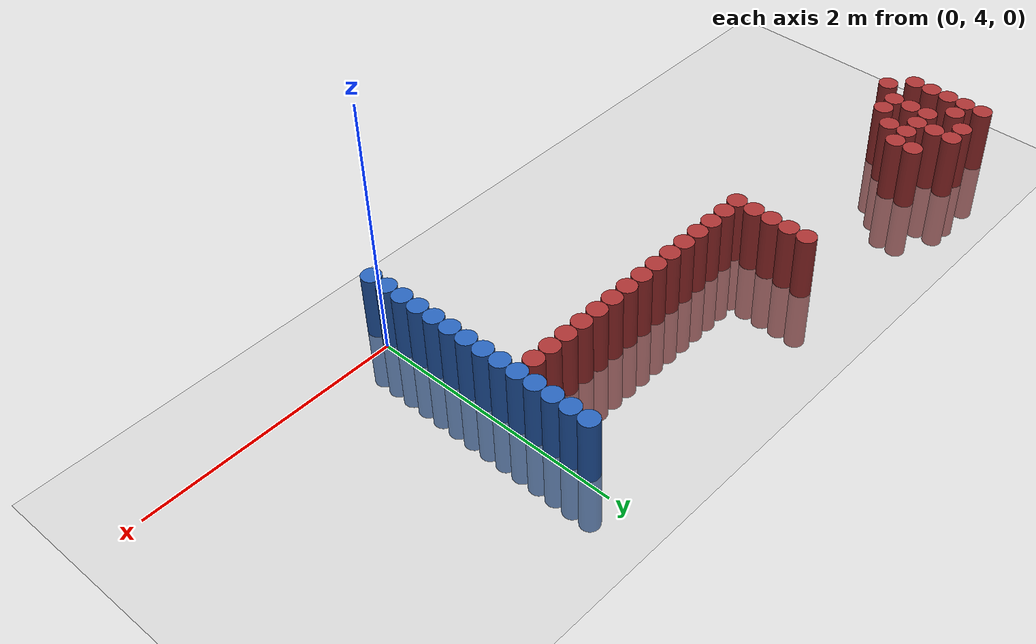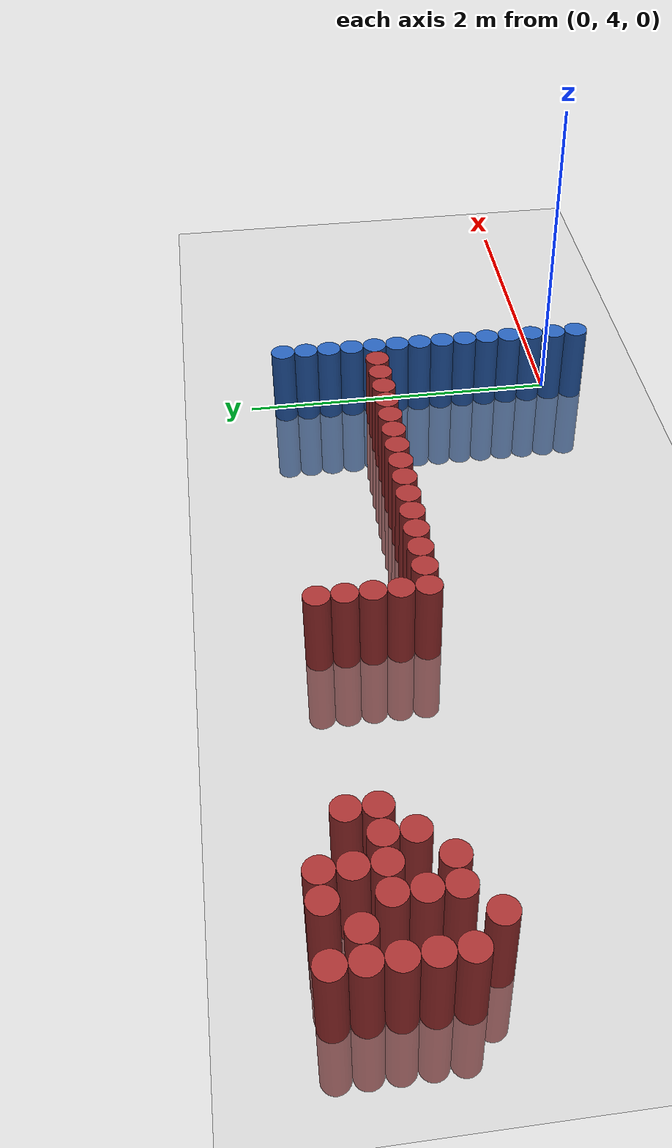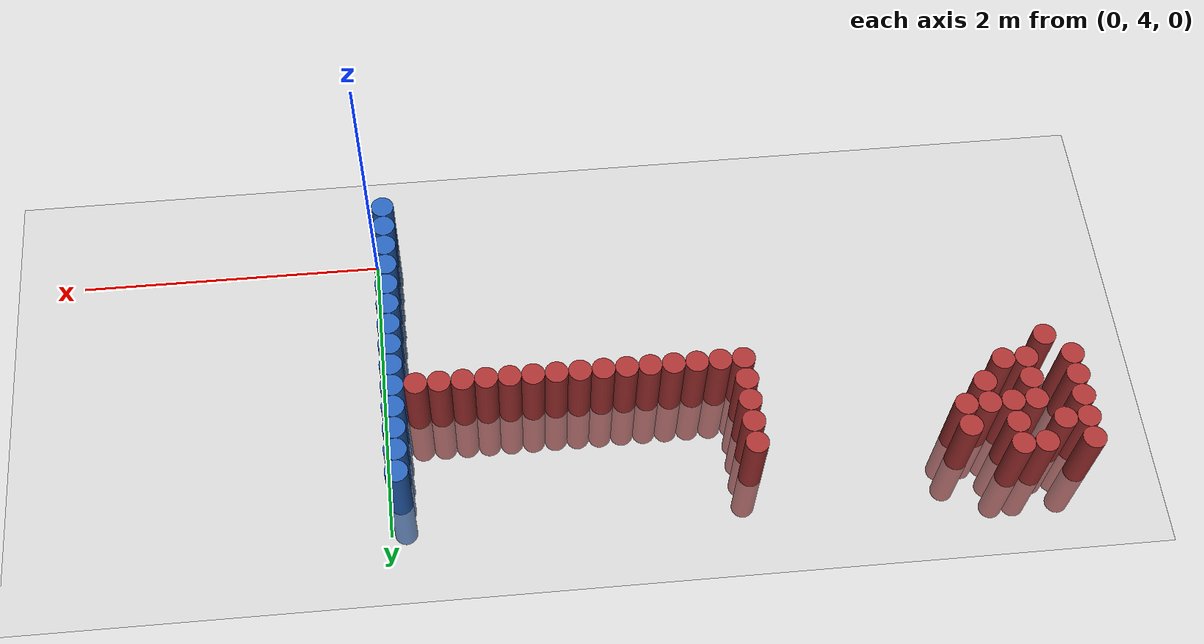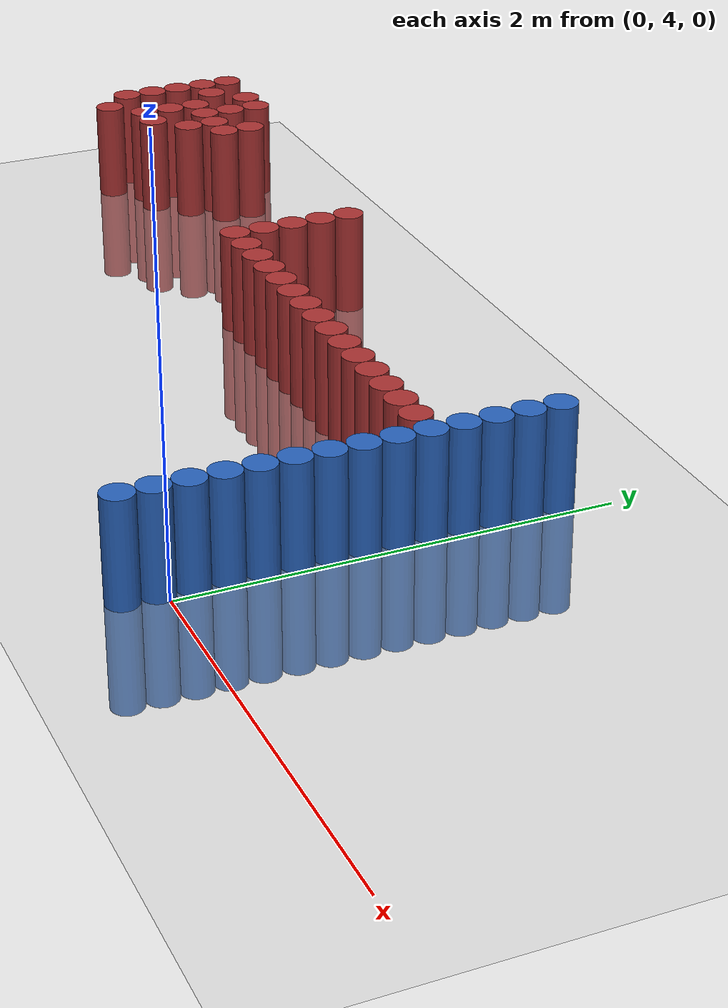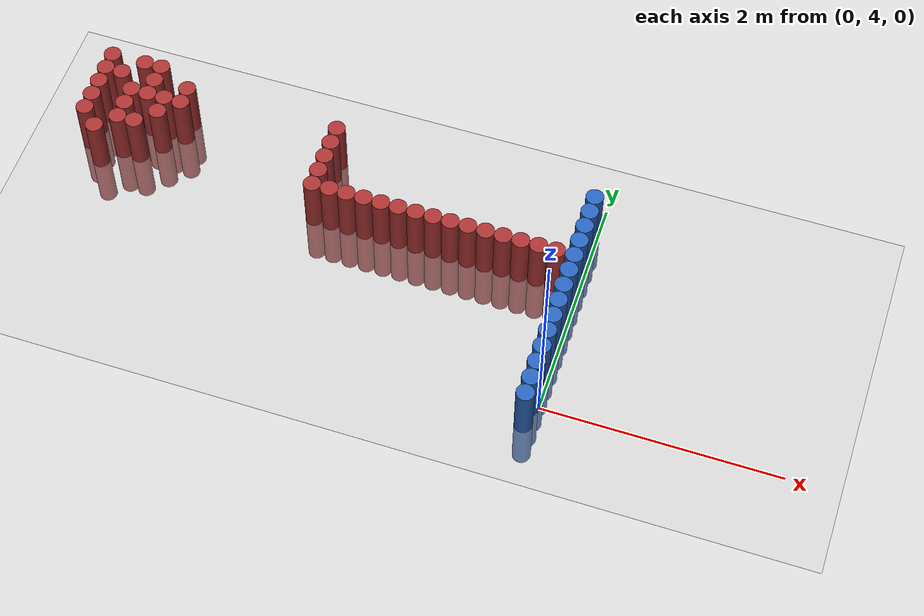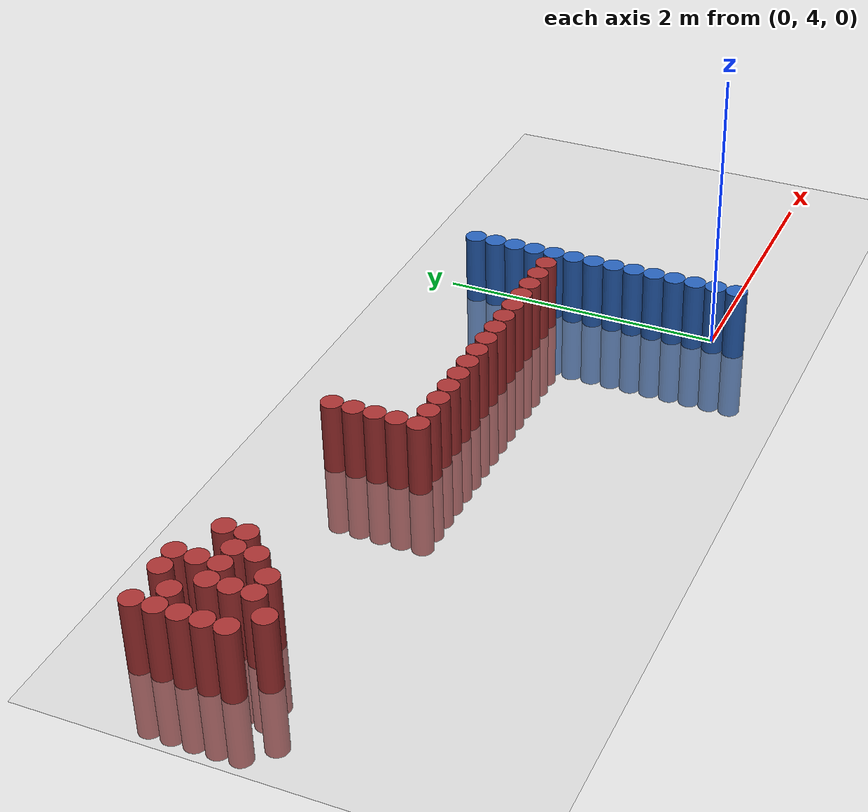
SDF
<sdf version="1.6">
 <world name="default">
  <model name="ground_plane">
   <static>1</static>
   <link name="link">
    <collision name="collision">
     <geometry><plane><normal>0 0 1</normal><size>100 100</size></plane></geometry>
     <surface><friction><ode><mu>100</mu><mu2>50</mu2></ode></friction></surface>
    </collision>
    <visual name="visual">
     <cast_shadows>0</cast_shadows>
     <geometry><plane><normal>0 0 1</normal><size>100 100</size></plane></geometry>
     <material>
      <script><uri>file://media/materials/scripts/gazebo.material</uri><name>Gazebo/Grey</name></script>
     </material>
    </visual>
   </link>
  </model>
  <model name="unit_cylinder_107">
   <static>1</static>
   <pose>-0.075000 3.825000 0.000000 0.000000 0.000000 0.000000</pose>
   <link name="link">
    <inertial>
     <mass>1</mass>
     <inertia><ixx>0.145833</ixx><ixy>0</ixy><ixz>0</ixz><iyy>0.145833</iyy><iyz>0</iyz><izz>0.125</izz></inertia>
    </inertial>
    <collision name="collision">
     <geometry><cylinder><radius>0.075000</radius><length>1</length></cylinder></geometry>
    </collision>
    <visual name="visual">
     <geometry><cylinder><radius>0.075000</radius><length>1</length></cylinder></geometry>
     <material>
      <ambient>0.152000 0.379000 0.720000 1</ambient>
      <diffuse>0.152000 0.379000 0.720000 1</diffuse>
     </material>
     <material>
      <script><name>Gazebo/Grey</name><uri>file://media/materials/scripts/gazebo.material</uri></script>
     </material>
    </visual>
   </link>
  </model>
  <model name="unit_cylinder_109">
   <static>1</static>
   <pose>-0.075000 3.975000 0.000000 0.000000 0.000000 0.000000</pose>
   <link name="link">
    <inertial>
     <mass>1</mass>
     <inertia><ixx>0.145833</ixx><ixy>0</ixy><ixz>0</ixz><iyy>0.145833</iyy><iyz>0</iyz><izz>0.125</izz></inertia>
    </inertial>
    <collision name="collision">
     <geometry><cylinder><radius>0.075000</radius><length>1</length></cylinder></geometry>
    </collision>
    <visual name="visual">
     <geometry><cylinder><radius>0.075000</radius><length>1</length></cylinder></geometry>
     <material>
      <ambient>0.152000 0.379000 0.720000 1</ambient>
      <diffuse>0.152000 0.379000 0.720000 1</diffuse>
     </material>
     <material>
      <script><name>Gazebo/Grey</name><uri>file://media/materials/scripts/gazebo.material</uri></script>
     </material>
    </visual>
   </link>
  </model>
  <model name="unit_cylinder_111">
   <static>1</static>
   <pose>-0.075000 4.125000 0.000000 0.000000 0.000000 0.000000</pose>
   <link name="link">
    <inertial>
     <mass>1</mass>
     <inertia><ixx>0.145833</ixx><ixy>0</ixy><ixz>0</ixz><iyy>0.145833</iyy><iyz>0</iyz><izz>0.125</izz></inertia>
    </inertial>
    <collision name="collision">
     <geometry><cylinder><radius>0.075000</radius><length>1</length></cylinder></geometry>
    </collision>
    <visual name="visual">
     <geometry><cylinder><radius>0.075000</radius><length>1</length></cylinder></geometry>
     <material>
      <ambient>0.152000 0.379000 0.720000 1</ambient>
      <diffuse>0.152000 0.379000 0.720000 1</diffuse>
     </material>
     <material>
      <script><name>Gazebo/Grey</name><uri>file://media/materials/scripts/gazebo.material</uri></script>
     </material>
    </visual>
   </link>
  </model>
  <model name="unit_cylinder_113">
   <static>1</static>
   <pose>-0.075000 4.275000 0.000000 0.000000 0.000000 0.000000</pose>
   <link name="link">
    <inertial>
     <mass>1</mass>
     <inertia><ixx>0.145833</ixx><ixy>0</ixy><ixz>0</ixz><iyy>0.145833</iyy><iyz>0</iyz><izz>0.125</izz></inertia>
    </inertial>
    <collision name="collision">
     <geometry><cylinder><radius>0.075000</radius><length>1</length></cylinder></geometry>
    </collision>
    <visual name="visual">
     <geometry><cylinder><radius>0.075000</radius><length>1</length></cylinder></geometry>
     <material>
      <ambient>0.152000 0.379000 0.720000 1</ambient>
      <diffuse>0.152000 0.379000 0.720000 1</diffuse>
     </material>
     <material>
      <script><name>Gazebo/Grey</name><uri>file://media/materials/scripts/gazebo.material</uri></script>
     </material>
    </visual>
   </link>
  </model>
  <model name="unit_cylinder_115">
   <static>1</static>
   <pose>-0.075000 4.425000 0.000000 0.000000 0.000000 0.000000</pose>
   <link name="link">
    <inertial>
     <mass>1</mass>
     <inertia><ixx>0.145833</ixx><ixy>0</ixy><ixz>0</ixz><iyy>0.145833</iyy><iyz>0</iyz><izz>0.125</izz></inertia>
    </inertial>
    <collision name="collision">
     <geometry><cylinder><radius>0.075000</radius><length>1</length></cylinder></geometry>
    </collision>
    <visual name="visual">
     <geometry><cylinder><radius>0.075000</radius><length>1</length></cylinder></geometry>
     <material>
      <ambient>0.152000 0.379000 0.720000 1</ambient>
      <diffuse>0.152000 0.379000 0.720000 1</diffuse>
     </material>
     <material>
      <script><name>Gazebo/Grey</name><uri>file://media/materials/scripts/gazebo.material</uri></script>
     </material>
    </visual>
   </link>
  </model>
  <model name="unit_cylinder_117">
   <static>1</static>
   <pose>-0.075000 4.575000 0.000000 0.000000 0.000000 0.000000</pose>
   <link name="link">
    <inertial>
     <mass>1</mass>
     <inertia><ixx>0.145833</ixx><ixy>0</ixy><ixz>0</ixz><iyy>0.145833</iyy><iyz>0</iyz><izz>0.125</izz></inertia>
    </inertial>
    <collision name="collision">
     <geometry><cylinder><radius>0.075000</radius><length>1</length></cylinder></geometry>
    </collision>
    <visual name="visual">
     <geometry><cylinder><radius>0.075000</radius><length>1</length></cylinder></geometry>
     <material>
      <ambient>0.152000 0.379000 0.720000 1</ambient>
      <diffuse>0.152000 0.379000 0.720000 1</diffuse>
     </material>
     <material>
      <script><name>Gazebo/Grey</name><uri>file://media/materials/scripts/gazebo.material</uri></script>
     </material>
    </visual>
   </link>
  </model>
  <model name="unit_cylinder_119">
   <static>1</static>
   <pose>-0.075000 4.725000 0.000000 0.000000 0.000000 0.000000</pose>
   <link name="link">
    <inertial>
     <mass>1</mass>
     <inertia><ixx>0.145833</ixx><ixy>0</ixy><ixz>0</ixz><iyy>0.145833</iyy><iyz>0</iyz><izz>0.125</izz></inertia>
    </inertial>
    <collision name="collision">
     <geometry><cylinder><radius>0.075000</radius><length>1</length></cylinder></geometry>
    </collision>
    <visual name="visual">
     <geometry><cylinder><radius>0.075000</radius><length>1</length></cylinder></geometry>
     <material>
      <ambient>0.152000 0.379000 0.720000 1</ambient>
      <diffuse>0.152000 0.379000 0.720000 1</diffuse>
     </material>
     <material>
      <script><name>Gazebo/Grey</name><uri>file://media/materials/scripts/gazebo.material</uri></script>
     </material>
    </visual>
   </link>
  </model>
  <model name="unit_cylinder_121">
   <static>1</static>
   <pose>-0.075000 4.875000 0.000000 0.000000 0.000000 0.000000</pose>
   <link name="link">
    <inertial>
     <mass>1</mass>
     <inertia><ixx>0.145833</ixx><ixy>0</ixy><ixz>0</ixz><iyy>0.145833</iyy><iyz>0</iyz><izz>0.125</izz></inertia>
    </inertial>
    <collision name="collision">
     <geometry><cylinder><radius>0.075000</radius><length>1</length></cylinder></geometry>
    </collision>
    <visual name="visual">
     <geometry><cylinder><radius>0.075000</radius><length>1</length></cylinder></geometry>
     <material>
      <ambient>0.152000 0.379000 0.720000 1</ambient>
      <diffuse>0.152000 0.379000 0.720000 1</diffuse>
     </material>
     <material>
      <script><name>Gazebo/Grey</name><uri>file://media/materials/scripts/gazebo.material</uri></script>
     </material>
    </visual>
   </link>
  </model>
  <model name="unit_cylinder_123">
   <static>1</static>
   <pose>-0.075000 5.025000 0.000000 0.000000 0.000000 0.000000</pose>
   <link name="link">
    <inertial>
     <mass>1</mass>
     <inertia><ixx>0.145833</ixx><ixy>0</ixy><ixz>0</ixz><iyy>0.145833</iyy><iyz>0</iyz><izz>0.125</izz></inertia>
    </inertial>
    <collision name="collision">
     <geometry><cylinder><radius>0.075000</radius><length>1</length></cylinder></geometry>
    </collision>
    <visual name="visual">
     <geometry><cylinder><radius>0.075000</radius><length>1</length></cylinder></geometry>
     <material>
      <ambient>0.152000 0.379000 0.720000 1</ambient>
      <diffuse>0.152000 0.379000 0.720000 1</diffuse>
     </material>
     <material>
      <script><name>Gazebo/Grey</name><uri>file://media/materials/scripts/gazebo.material</uri></script>
     </material>
    </visual>
   </link>
  </model>
  <model name="unit_cylinder_282">
   <static>1</static>
   <pose>-4.425000 5.325000 0.000000 0.000000 0.000000 0.000000</pose>
   <link name="link">
    <inertial>
     <mass>1</mass>
     <inertia><ixx>0.145833</ixx><ixy>0</ixy><ixz>0</ixz><iyy>0.145833</iyy><iyz>0</iyz><izz>0.125</izz></inertia>
    </inertial>
    <collision name="collision">
     <geometry><cylinder><radius>0.075000</radius><length>1</length></cylinder></geometry>
    </collision>
    <visual name="visual">
     <geometry><cylinder><radius>0.075000</radius><length>1</length></cylinder></geometry>
     <material>
      <ambient>0.648000 0.192000 0.192000 1</ambient>
      <diffuse>0.648000 0.192000 0.192000 1</diffuse>
     </material>
     <material>
      <script><name>Gazebo/Grey</name><uri>file://media/materials/scripts/gazebo.material</uri></script>
     </material>
    </visual>
   </link>
  </model>
  <model name="unit_cylinder_283">
   <static>1</static>
   <pose>-4.425000 5.475000 0.000000 0.000000 0.000000 0.000000</pose>
   <link name="link">
    <inertial>
     <mass>1</mass>
     <inertia><ixx>0.145833</ixx><ixy>0</ixy><ixz>0</ixz><iyy>0.145833</iyy><iyz>0</iyz><izz>0.125</izz></inertia>
    </inertial>
    <collision name="collision">
     <geometry><cylinder><radius>0.075000</radius><length>1</length></cylinder></geometry>
    </collision>
    <visual name="visual">
     <geometry><cylinder><radius>0.075000</radius><length>1</length></cylinder></geometry>
     <material>
      <ambient>0.648000 0.192000 0.192000 1</ambient>
      <diffuse>0.648000 0.192000 0.192000 1</diffuse>
     </material>
     <material>
      <script><name>Gazebo/Grey</name><uri>file://media/materials/scripts/gazebo.material</uri></script>
     </material>
    </visual>
   </link>
  </model>
  <model name="unit_cylinder_284">
   <static>1</static>
   <pose>-4.425000 5.625000 0.000000 0.000000 0.000000 0.000000</pose>
   <link name="link">
    <inertial>
     <mass>1</mass>
     <inertia><ixx>0.145833</ixx><ixy>0</ixy><ixz>0</ixz><iyy>0.145833</iyy><iyz>0</iyz><izz>0.125</izz></inertia>
    </inertial>
    <collision name="collision">
     <geometry><cylinder><radius>0.075000</radius><length>1</length></cylinder></geometry>
    </collision>
    <visual name="visual">
     <geometry><cylinder><radius>0.075000</radius><length>1</length></cylinder></geometry>
     <material>
      <ambient>0.648000 0.192000 0.192000 1</ambient>
      <diffuse>0.648000 0.192000 0.192000 1</diffuse>
     </material>
     <material>
      <script><name>Gazebo/Grey</name><uri>file://media/materials/scripts/gazebo.material</uri></script>
     </material>
    </visual>
   </link>
  </model>
  <model name="unit_cylinder_285">
   <static>1</static>
   <pose>-4.425000 5.775000 0.000000 0.000000 0.000000 0.000000</pose>
   <link name="link">
    <inertial>
     <mass>1</mass>
     <inertia><ixx>0.145833</ixx><ixy>0</ixy><ixz>0</ixz><iyy>0.145833</iyy><iyz>0</iyz><izz>0.125</izz></inertia>
    </inertial>
    <collision name="collision">
     <geometry><cylinder><radius>0.075000</radius><length>1</length></cylinder></geometry>
    </collision>
    <visual name="visual">
     <geometry><cylinder><radius>0.075000</radius><length>1</length></cylinder></geometry>
     <material>
      <ambient>0.648000 0.192000 0.192000 1</ambient>
      <diffuse>0.648000 0.192000 0.192000 1</diffuse>
     </material>
     <material>
      <script><name>Gazebo/Grey</name><uri>file://media/materials/scripts/gazebo.material</uri></script>
     </material>
    </visual>
   </link>
  </model>
  <model name="unit_cylinder_286">
   <static>1</static>
   <pose>-4.425000 5.925000 0.000000 0.000000 0.000000 0.000000</pose>
   <link name="link">
    <inertial>
     <mass>1</mass>
     <inertia><ixx>0.145833</ixx><ixy>0</ixy><ixz>0</ixz><iyy>0.145833</iyy><iyz>0</iyz><izz>0.125</izz></inertia>
    </inertial>
    <collision name="collision">
     <geometry><cylinder><radius>0.075000</radius><length>1</length></cylinder></geometry>
    </collision>
    <visual name="visual">
     <geometry><cylinder><radius>0.075000</radius><length>1</length></cylinder></geometry>
     <material>
      <ambient>0.648000 0.192000 0.192000 1</ambient>
      <diffuse>0.648000 0.192000 0.192000 1</diffuse>
     </material>
     <material>
      <script><name>Gazebo/Grey</name><uri>file://media/materials/scripts/gazebo.material</uri></script>
     </material>
    </visual>
   </link>
  </model>
  <model name="unit_cylinder_290">
   <static>1</static>
   <pose>-4.275000 5.175000 0.000000 0.000000 0.000000 0.000000</pose>
   <link name="link">
    <inertial>
     <mass>1</mass>
     <inertia><ixx>0.145833</ixx><ixy>0</ixy><ixz>0</ixz><iyy>0.145833</iyy><iyz>0</iyz><izz>0.125</izz></inertia>
    </inertial>
    <collision name="collision">
     <geometry><cylinder><radius>0.075000</radius><length>1</length></cylinder></geometry>
    </collision>
    <visual name="visual">
     <geometry><cylinder><radius>0.075000</radius><length>1</length></cylinder></geometry>
     <material>
      <ambient>0.648000 0.192000 0.192000 1</ambient>
      <diffuse>0.648000 0.192000 0.192000 1</diffuse>
     </material>
     <material>
      <script><name>Gazebo/Grey</name><uri>file://media/materials/scripts/gazebo.material</uri></script>
     </material>
    </visual>
   </link>
  </model>
  <model name="unit_cylinder_291">
   <static>1</static>
   <pose>-4.275000 5.775000 0.000000 0.000000 0.000000 0.000000</pose>
   <link name="link">
    <inertial>
     <mass>1</mass>
     <inertia><ixx>0.145833</ixx><ixy>0</ixy><ixz>0</ixz><iyy>0.145833</iyy><iyz>0</iyz><izz>0.125</izz></inertia>
    </inertial>
    <collision name="collision">
     <geometry><cylinder><radius>0.075000</radius><length>1</length></cylinder></geometry>
    </collision>
    <visual name="visual">
     <geometry><cylinder><radius>0.075000</radius><length>1</length></cylinder></geometry>
     <material>
      <ambient>0.648000 0.192000 0.192000 1</ambient>
      <diffuse>0.648000 0.192000 0.192000 1</diffuse>
     </material>
     <material>
      <script><name>Gazebo/Grey</name><uri>file://media/materials/scripts/gazebo.material</uri></script>
     </material>
    </visual>
   </link>
  </model>
  <model name="unit_cylinder_297">
   <static>1</static>
   <pose>-4.125000 5.325000 0.000000 0.000000 0.000000 0.000000</pose>
   <link name="link">
    <inertial>
     <mass>1</mass>
     <inertia><ixx>0.145833</ixx><ixy>0</ixy><ixz>0</ixz><iyy>0.145833</iyy><iyz>0</iyz><izz>0.125</izz></inertia>
    </inertial>
    <collision name="collision">
     <geometry><cylinder><radius>0.075000</radius><length>1</length></cylinder></geometry>
    </collision>
    <visual name="visual">
     <geometry><cylinder><radius>0.075000</radius><length>1</length></cylinder></geometry>
     <material>
      <ambient>0.648000 0.192000 0.192000 1</ambient>
      <diffuse>0.648000 0.192000 0.192000 1</diffuse>
     </material>
     <material>
      <script><name>Gazebo/Grey</name><uri>file://media/materials/scripts/gazebo.material</uri></script>
     </material>
    </visual>
   </link>
  </model>
  <model name="unit_cylinder_298">
   <static>1</static>
   <pose>-4.125000 5.475000 0.000000 0.000000 0.000000 0.000000</pose>
   <link name="link">
    <inertial>
     <mass>1</mass>
     <inertia><ixx>0.145833</ixx><ixy>0</ixy><ixz>0</ixz><iyy>0.145833</iyy><iyz>0</iyz><izz>0.125</izz></inertia>
    </inertial>
    <collision name="collision">
     <geometry><cylinder><radius>0.075000</radius><length>1</length></cylinder></geometry>
    </collision>
    <visual name="visual">
     <geometry><cylinder><radius>0.075000</radius><length>1</length></cylinder></geometry>
     <material>
      <ambient>0.648000 0.192000 0.192000 1</ambient>
      <diffuse>0.648000 0.192000 0.192000 1</diffuse>
     </material>
     <material>
      <script><name>Gazebo/Grey</name><uri>file://media/materials/scripts/gazebo.material</uri></script>
     </material>
    </visual>
   </link>
  </model>
  <model name="unit_cylinder_299">
   <static>1</static>
   <pose>-4.125000 5.625000 0.000000 0.000000 0.000000 0.000000</pose>
   <link name="link">
    <inertial>
     <mass>1</mass>
     <inertia><ixx>0.145833</ixx><ixy>0</ixy><ixz>0</ixz><iyy>0.145833</iyy><iyz>0</iyz><izz>0.125</izz></inertia>
    </inertial>
    <collision name="collision">
     <geometry><cylinder><radius>0.075000</radius><length>1</length></cylinder></geometry>
    </collision>
    <visual name="visual">
     <geometry><cylinder><radius>0.075000</radius><length>1</length></cylinder></geometry>
     <material>
      <ambient>0.648000 0.192000 0.192000 1</ambient>
      <diffuse>0.648000 0.192000 0.192000 1</diffuse>
     </material>
     <material>
      <script><name>Gazebo/Grey</name><uri>file://media/materials/scripts/gazebo.material</uri></script>
     </material>
    </visual>
   </link>
  </model>
  <model name="unit_cylinder_300">
   <static>1</static>
   <pose>-4.125000 5.925000 0.000000 0.000000 0.000000 0.000000</pose>
   <link name="link">
    <inertial>
     <mass>1</mass>
     <inertia><ixx>0.145833</ixx><ixy>0</ixy><ixz>0</ixz><iyy>0.145833</iyy><iyz>0</iyz><izz>0.125</izz></inertia>
    </inertial>
    <collision name="collision">
     <geometry><cylinder><radius>0.075000</radius><length>1</length></cylinder></geometry>
    </collision>
    <visual name="visual">
     <geometry><cylinder><radius>0.075000</radius><length>1</length></cylinder></geometry>
     <material>
      <ambient>0.648000 0.192000 0.192000 1</ambient>
      <diffuse>0.648000 0.192000 0.192000 1</diffuse>
     </material>
     <material>
      <script><name>Gazebo/Grey</name><uri>file://media/materials/scripts/gazebo.material</uri></script>
     </material>
    </visual>
   </link>
  </model>
  <model name="unit_cylinder_305">
   <static>1</static>
   <pose>-3.975000 5.325000 0.000000 0.000000 0.000000 0.000000</pose>
   <link name="link">
    <inertial>
     <mass>1</mass>
     <inertia><ixx>0.145833</ixx><ixy>0</ixy><ixz>0</ixz><iyy>0.145833</iyy><iyz>0</iyz><izz>0.125</izz></inertia>
    </inertial>
    <collision name="collision">
     <geometry><cylinder><radius>0.075000</radius><length>1</length></cylinder></geometry>
    </collision>
    <visual name="visual">
     <geometry><cylinder><radius>0.075000</radius><length>1</length></cylinder></geometry>
     <material>
      <ambient>0.648000 0.192000 0.192000 1</ambient>
      <diffuse>0.648000 0.192000 0.192000 1</diffuse>
     </material>
     <material>
      <script><name>Gazebo/Grey</name><uri>file://media/materials/scripts/gazebo.material</uri></script>
     </material>
    </visual>
   </link>
  </model>
  <model name="unit_cylinder_306">
   <static>1</static>
   <pose>-3.975000 5.625000 0.000000 0.000000 0.000000 0.000000</pose>
   <link name="link">
    <inertial>
     <mass>1</mass>
     <inertia><ixx>0.145833</ixx><ixy>0</ixy><ixz>0</ixz><iyy>0.145833</iyy><iyz>0</iyz><izz>0.125</izz></inertia>
    </inertial>
    <collision name="collision">
     <geometry><cylinder><radius>0.075000</radius><length>1</length></cylinder></geometry>
    </collision>
    <visual name="visual">
     <geometry><cylinder><radius>0.075000</radius><length>1</length></cylinder></geometry>
     <material>
      <ambient>0.648000 0.192000 0.192000 1</ambient>
      <diffuse>0.648000 0.192000 0.192000 1</diffuse>
     </material>
     <material>
      <script><name>Gazebo/Grey</name><uri>file://media/materials/scripts/gazebo.material</uri></script>
     </material>
    </visual>
   </link>
  </model>
  <model name="unit_cylinder_307">
   <static>1</static>
   <pose>-3.975000 5.775000 0.000000 0.000000 0.000000 0.000000</pose>
   <link name="link">
    <inertial>
     <mass>1</mass>
     <inertia><ixx>0.145833</ixx><ixy>0</ixy><ixz>0</ixz><iyy>0.145833</iyy><iyz>0</iyz><izz>0.125</izz></inertia>
    </inertial>
    <collision name="collision">
     <geometry><cylinder><radius>0.075000</radius><length>1</length></cylinder></geometry>
    </collision>
    <visual name="visual">
     <geometry><cylinder><radius>0.075000</radius><length>1</length></cylinder></geometry>
     <material>
      <ambient>0.648000 0.192000 0.192000 1</ambient>
      <diffuse>0.648000 0.192000 0.192000 1</diffuse>
     </material>
     <material>
      <script><name>Gazebo/Grey</name><uri>file://media/materials/scripts/gazebo.material</uri></script>
     </material>
    </visual>
   </link>
  </model>
  <model name="unit_cylinder_308">
   <static>1</static>
   <pose>-3.975000 5.925000 0.000000 0.000000 0.000000 0.000000</pose>
   <link name="link">
    <inertial>
     <mass>1</mass>
     <inertia><ixx>0.145833</ixx><ixy>0</ixy><ixz>0</ixz><iyy>0.145833</iyy><iyz>0</iyz><izz>0.125</izz></inertia>
    </inertial>
    <collision name="collision">
     <geometry><cylinder><radius>0.075000</radius><length>1</length></cylinder></geometry>
    </collision>
    <visual name="visual">
     <geometry><cylinder><radius>0.075000</radius><length>1</length></cylinder></geometry>
     <material>
      <ambient>0.648000 0.192000 0.192000 1</ambient>
      <diffuse>0.648000 0.192000 0.192000 1</diffuse>
     </material>
     <material>
      <script><name>Gazebo/Grey</name><uri>file://media/materials/scripts/gazebo.material</uri></script>
     </material>
    </visual>
   </link>
  </model>
  <model name="unit_cylinder_309">
   <static>1</static>
   <pose>-3.825000 5.475000 0.000000 0.000000 0.000000 0.000000</pose>
   <link name="link">
    <inertial>
     <mass>1</mass>
     <inertia><ixx>0.145833</ixx><ixy>0</ixy><ixz>0</ixz><iyy>0.145833</iyy><iyz>0</iyz><izz>0.125</izz></inertia>
    </inertial>
    <collision name="collision">
     <geometry><cylinder><radius>0.075000</radius><length>1</length></cylinder></geometry>
    </collision>
    <visual name="visual">
     <geometry><cylinder><radius>0.075000</radius><length>1</length></cylinder></geometry>
     <material>
      <ambient>0.648000 0.192000 0.192000 1</ambient>
      <diffuse>0.648000 0.192000 0.192000 1</diffuse>
     </material>
     <material>
      <script><name>Gazebo/Grey</name><uri>file://media/materials/scripts/gazebo.material</uri></script>
     </material>
    </visual>
   </link>
  </model>
  <model name="unit_cylinder_310">
   <static>1</static>
   <pose>-3.825000 5.625000 0.000000 0.000000 0.000000 0.000000</pose>
   <link name="link">
    <inertial>
     <mass>1</mass>
     <inertia><ixx>0.145833</ixx><ixy>0</ixy><ixz>0</ixz><iyy>0.145833</iyy><iyz>0</iyz><izz>0.125</izz></inertia>
    </inertial>
    <collision name="collision">
     <geometry><cylinder><radius>0.075000</radius><length>1</length></cylinder></geometry>
    </collision>
    <visual name="visual">
     <geometry><cylinder><radius>0.075000</radius><length>1</length></cylinder></geometry>
     <material>
      <ambient>0.648000 0.192000 0.192000 1</ambient>
      <diffuse>0.648000 0.192000 0.192000 1</diffuse>
     </material>
     <material>
      <script><name>Gazebo/Grey</name><uri>file://media/materials/scripts/gazebo.material</uri></script>
     </material>
    </visual>
   </link>
  </model>
  <model name="unit_cylinder_312">
   <static>1</static>
   <pose>-3.675000 5.625000 0.000000 0.000000 0.000000 0.000000</pose>
   <link name="link">
    <inertial>
     <mass>1</mass>
     <inertia><ixx>0.145833</ixx><ixy>0</ixy><ixz>0</ixz><iyy>0.145833</iyy><iyz>0</iyz><izz>0.125</izz></inertia>
    </inertial>
    <collision name="collision">
     <geometry><cylinder><radius>0.075000</radius><length>1</length></cylinder></geometry>
    </collision>
    <visual name="visual">
     <geometry><cylinder><radius>0.075000</radius><length>1</length></cylinder></geometry>
     <material>
      <ambient>0.648000 0.192000 0.192000 1</ambient>
      <diffuse>0.648000 0.192000 0.192000 1</diffuse>
     </material>
     <material>
      <script><name>Gazebo/Grey</name><uri>file://media/materials/scripts/gazebo.material</uri></script>
     </material>
    </visual>
   </link>
  </model>
  <model name="unit_cylinder_313">
   <static>1</static>
   <pose>-3.675000 5.775000 0.000000 0.000000 0.000000 0.000000</pose>
   <link name="link">
    <inertial>
     <mass>1</mass>
     <inertia><ixx>0.145833</ixx><ixy>0</ixy><ixz>0</ixz><iyy>0.145833</iyy><iyz>0</iyz><izz>0.125</izz></inertia>
    </inertial>
    <collision name="collision">
     <geometry><cylinder><radius>0.075000</radius><length>1</length></cylinder></geometry>
    </collision>
    <visual name="visual">
     <geometry><cylinder><radius>0.075000</radius><length>1</length></cylinder></geometry>
     <material>
      <ambient>0.648000 0.192000 0.192000 1</ambient>
      <diffuse>0.648000 0.192000 0.192000 1</diffuse>
     </material>
     <material>
      <script><name>Gazebo/Grey</name><uri>file://media/materials/scripts/gazebo.material</uri></script>
     </material>
    </visual>
   </link>
  </model>
  <model name="unit_cylinder_347">
   <static>1</static>
   <pose>-2.325000 5.175000 0.000000 0.000000 0.000000 0.000000</pose>
   <link name="link">
    <inertial>
     <mass>1</mass>
     <inertia><ixx>0.145833</ixx><ixy>0</ixy><ixz>0</ixz><iyy>0.145833</iyy><iyz>0</iyz><izz>0.125</izz></inertia>
    </inertial>
    <collision name="collision">
     <geometry><cylinder><radius>0.075000</radius><length>1</length></cylinder></geometry>
    </collision>
    <visual name="visual">
     <geometry><cylinder><radius>0.075000</radius><length>1</length></cylinder></geometry>
     <material>
      <ambient>0.648000 0.192000 0.192000 1</ambient>
      <diffuse>0.648000 0.192000 0.192000 1</diffuse>
     </material>
     <material>
      <script><name>Gazebo/Grey</name><uri>file://media/materials/scripts/gazebo.material</uri></script>
     </material>
    </visual>
   </link>
  </model>
  <model name="unit_cylinder_348">
   <static>1</static>
   <pose>-2.325000 5.325000 0.000000 0.000000 0.000000 0.000000</pose>
   <link name="link">
    <inertial>
     <mass>1</mass>
     <inertia><ixx>0.145833</ixx><ixy>0</ixy><ixz>0</ixz><iyy>0.145833</iyy><iyz>0</iyz><izz>0.125</izz></inertia>
    </inertial>
    <collision name="collision">
     <geometry><cylinder><radius>0.075000</radius><length>1</length></cylinder></geometry>
    </collision>
    <visual name="visual">
     <geometry><cylinder><radius>0.075000</radius><length>1</length></cylinder></geometry>
     <material>
      <ambient>0.648000 0.192000 0.192000 1</ambient>
      <diffuse>0.648000 0.192000 0.192000 1</diffuse>
     </material>
     <material>
      <script><name>Gazebo/Grey</name><uri>file://media/materials/scripts/gazebo.material</uri></script>
     </material>
    </visual>
   </link>
  </model>
  <model name="unit_cylinder_349">
   <static>1</static>
   <pose>-2.325000 5.475000 0.000000 0.000000 0.000000 0.000000</pose>
   <link name="link">
    <inertial>
     <mass>1</mass>
     <inertia><ixx>0.145833</ixx><ixy>0</ixy><ixz>0</ixz><iyy>0.145833</iyy><iyz>0</iyz><izz>0.125</izz></inertia>
    </inertial>
    <collision name="collision">
     <geometry><cylinder><radius>0.075000</radius><length>1</length></cylinder></geometry>
    </collision>
    <visual name="visual">
     <geometry><cylinder><radius>0.075000</radius><length>1</length></cylinder></geometry>
     <material>
      <ambient>0.648000 0.192000 0.192000 1</ambient>
      <diffuse>0.648000 0.192000 0.192000 1</diffuse>
     </material>
     <material>
      <script><name>Gazebo/Grey</name><uri>file://media/materials/scripts/gazebo.material</uri></script>
     </material>
    </visual>
   </link>
  </model>
  <model name="unit_cylinder_350">
   <static>1</static>
   <pose>-2.325000 5.625000 0.000000 0.000000 0.000000 0.000000</pose>
   <link name="link">
    <inertial>
     <mass>1</mass>
     <inertia><ixx>0.145833</ixx><ixy>0</ixy><ixz>0</ixz><iyy>0.145833</iyy><iyz>0</iyz><izz>0.125</izz></inertia>
    </inertial>
    <collision name="collision">
     <geometry><cylinder><radius>0.075000</radius><length>1</length></cylinder></geometry>
    </collision>
    <visual name="visual">
     <geometry><cylinder><radius>0.075000</radius><length>1</length></cylinder></geometry>
     <material>
      <ambient>0.648000 0.192000 0.192000 1</ambient>
      <diffuse>0.648000 0.192000 0.192000 1</diffuse>
     </material>
     <material>
      <script><name>Gazebo/Grey</name><uri>file://media/materials/scripts/gazebo.material</uri></script>
     </material>
    </visual>
   </link>
  </model>
  <model name="unit_cylinder_351">
   <static>1</static>
   <pose>-2.325000 5.775000 0.000000 0.000000 0.000000 0.000000</pose>
   <link name="link">
    <inertial>
     <mass>1</mass>
     <inertia><ixx>0.145833</ixx><ixy>0</ixy><ixz>0</ixz><iyy>0.145833</iyy><iyz>0</iyz><izz>0.125</izz></inertia>
    </inertial>
    <collision name="collision">
     <geometry><cylinder><radius>0.075000</radius><length>1</length></cylinder></geometry>
    </collision>
    <visual name="visual">
     <geometry><cylinder><radius>0.075000</radius><length>1</length></cylinder></geometry>
     <material>
      <ambient>0.648000 0.192000 0.192000 1</ambient>
      <diffuse>0.648000 0.192000 0.192000 1</diffuse>
     </material>
     <material>
      <script><name>Gazebo/Grey</name><uri>file://media/materials/scripts/gazebo.material</uri></script>
     </material>
    </visual>
   </link>
  </model>
  <model name="unit_cylinder_362">
   <static>1</static>
   <pose>-2.175000 5.175000 0.000000 0.000000 0.000000 0.000000</pose>
   <link name="link">
    <inertial>
     <mass>1</mass>
     <inertia><ixx>0.145833</ixx><ixy>0</ixy><ixz>0</ixz><iyy>0.145833</iyy><iyz>0</iyz><izz>0.125</izz></inertia>
    </inertial>
    <collision name="collision">
     <geometry><cylinder><radius>0.075000</radius><length>1</length></cylinder></geometry>
    </collision>
    <visual name="visual">
     <geometry><cylinder><radius>0.075000</radius><length>1</length></cylinder></geometry>
     <material>
      <ambient>0.648000 0.192000 0.192000 1</ambient>
      <diffuse>0.648000 0.192000 0.192000 1</diffuse>
     </material>
     <material>
      <script><name>Gazebo/Grey</name><uri>file://media/materials/scripts/gazebo.material</uri></script>
     </material>
    </visual>
   </link>
  </model>
  <model name="unit_cylinder_364">
   <static>1</static>
   <pose>-2.025000 5.175000 0.000000 0.000000 0.000000 0.000000</pose>
   <link name="link">
    <inertial>
     <mass>1</mass>
     <inertia><ixx>0.145833</ixx><ixy>0</ixy><ixz>0</ixz><iyy>0.145833</iyy><iyz>0</iyz><izz>0.125</izz></inertia>
    </inertial>
    <collision name="collision">
     <geometry><cylinder><radius>0.075000</radius><length>1</length></cylinder></geometry>
    </collision>
    <visual name="visual">
     <geometry><cylinder><radius>0.075000</radius><length>1</length></cylinder></geometry>
     <material>
      <ambient>0.648000 0.192000 0.192000 1</ambient>
      <diffuse>0.648000 0.192000 0.192000 1</diffuse>
     </material>
     <material>
      <script><name>Gazebo/Grey</name><uri>file://media/materials/scripts/gazebo.material</uri></script>
     </material>
    </visual>
   </link>
  </model>
  <model name="unit_cylinder_366">
   <static>1</static>
   <pose>-1.875000 5.175000 0.000000 0.000000 0.000000 0.000000</pose>
   <link name="link">
    <inertial>
     <mass>1</mass>
     <inertia><ixx>0.145833</ixx><ixy>0</ixy><ixz>0</ixz><iyy>0.145833</iyy><iyz>0</iyz><izz>0.125</izz></inertia>
    </inertial>
    <collision name="collision">
     <geometry><cylinder><radius>0.075000</radius><length>1</length></cylinder></geometry>
    </collision>
    <visual name="visual">
     <geometry><cylinder><radius>0.075000</radius><length>1</length></cylinder></geometry>
     <material>
      <ambient>0.648000 0.192000 0.192000 1</ambient>
      <diffuse>0.648000 0.192000 0.192000 1</diffuse>
     </material>
     <material>
      <script><name>Gazebo/Grey</name><uri>file://media/materials/scripts/gazebo.material</uri></script>
     </material>
    </visual>
   </link>
  </model>
  <model name="unit_cylinder_368">
   <static>1</static>
   <pose>-1.725000 5.175000 0.000000 0.000000 0.000000 0.000000</pose>
   <link name="link">
    <inertial>
     <mass>1</mass>
     <inertia><ixx>0.145833</ixx><ixy>0</ixy><ixz>0</ixz><iyy>0.145833</iyy><iyz>0</iyz><izz>0.125</izz></inertia>
    </inertial>
    <collision name="collision">
     <geometry><cylinder><radius>0.075000</radius><length>1</length></cylinder></geometry>
    </collision>
    <visual name="visual">
     <geometry><cylinder><radius>0.075000</radius><length>1</length></cylinder></geometry>
     <material>
      <ambient>0.648000 0.192000 0.192000 1</ambient>
      <diffuse>0.648000 0.192000 0.192000 1</diffuse>
     </material>
     <material>
      <script><name>Gazebo/Grey</name><uri>file://media/materials/scripts/gazebo.material</uri></script>
     </material>
    </visual>
   </link>
  </model>
  <model name="unit_cylinder_370">
   <static>1</static>
   <pose>-1.575000 5.175000 0.000000 0.000000 0.000000 0.000000</pose>
   <link name="link">
    <inertial>
     <mass>1</mass>
     <inertia><ixx>0.145833</ixx><ixy>0</ixy><ixz>0</ixz><iyy>0.145833</iyy><iyz>0</iyz><izz>0.125</izz></inertia>
    </inertial>
    <collision name="collision">
     <geometry><cylinder><radius>0.075000</radius><length>1</length></cylinder></geometry>
    </collision>
    <visual name="visual">
     <geometry><cylinder><radius>0.075000</radius><length>1</length></cylinder></geometry>
     <material>
      <ambient>0.648000 0.192000 0.192000 1</ambient>
      <diffuse>0.648000 0.192000 0.192000 1</diffuse>
     </material>
     <material>
      <script><name>Gazebo/Grey</name><uri>file://media/materials/scripts/gazebo.material</uri></script>
     </material>
    </visual>
   </link>
  </model>
  <model name="unit_cylinder_372">
   <static>1</static>
   <pose>-1.425000 5.175000 0.000000 0.000000 0.000000 0.000000</pose>
   <link name="link">
    <inertial>
     <mass>1</mass>
     <inertia><ixx>0.145833</ixx><ixy>0</ixy><ixz>0</ixz><iyy>0.145833</iyy><iyz>0</iyz><izz>0.125</izz></inertia>
    </inertial>
    <collision name="collision">
     <geometry><cylinder><radius>0.075000</radius><length>1</length></cylinder></geometry>
    </collision>
    <visual name="visual">
     <geometry><cylinder><radius>0.075000</radius><length>1</length></cylinder></geometry>
     <material>
      <ambient>0.648000 0.192000 0.192000 1</ambient>
      <diffuse>0.648000 0.192000 0.192000 1</diffuse>
     </material>
     <material>
      <script><name>Gazebo/Grey</name><uri>file://media/materials/scripts/gazebo.material</uri></script>
     </material>
    </visual>
   </link>
  </model>
  <model name="unit_cylinder_374">
   <static>1</static>
   <pose>-1.275000 5.175000 0.000000 0.000000 0.000000 0.000000</pose>
   <link name="link">
    <inertial>
     <mass>1</mass>
     <inertia><ixx>0.145833</ixx><ixy>0</ixy><ixz>0</ixz><iyy>0.145833</iyy><iyz>0</iyz><izz>0.125</izz></inertia>
    </inertial>
    <collision name="collision">
     <geometry><cylinder><radius>0.075000</radius><length>1</length></cylinder></geometry>
    </collision>
    <visual name="visual">
     <geometry><cylinder><radius>0.075000</radius><length>1</length></cylinder></geometry>
     <material>
      <ambient>0.648000 0.192000 0.192000 1</ambient>
      <diffuse>0.648000 0.192000 0.192000 1</diffuse>
     </material>
     <material>
      <script><name>Gazebo/Grey</name><uri>file://media/materials/scripts/gazebo.material</uri></script>
     </material>
    </visual>
   </link>
  </model>
  <model name="unit_cylinder_376">
   <static>1</static>
   <pose>-1.125000 5.175000 0.000000 0.000000 0.000000 0.000000</pose>
   <link name="link">
    <inertial>
     <mass>1</mass>
     <inertia><ixx>0.145833</ixx><ixy>0</ixy><ixz>0</ixz><iyy>0.145833</iyy><iyz>0</iyz><izz>0.125</izz></inertia>
    </inertial>
    <collision name="collision">
     <geometry><cylinder><radius>0.075000</radius><length>1</length></cylinder></geometry>
    </collision>
    <visual name="visual">
     <geometry><cylinder><radius>0.075000</radius><length>1</length></cylinder></geometry>
     <material>
      <ambient>0.648000 0.192000 0.192000 1</ambient>
      <diffuse>0.648000 0.192000 0.192000 1</diffuse>
     </material>
     <material>
      <script><name>Gazebo/Grey</name><uri>file://media/materials/scripts/gazebo.material</uri></script>
     </material>
    </visual>
   </link>
  </model>
  <model name="unit_cylinder_378">
   <static>1</static>
   <pose>-0.975000 5.175000 0.000000 0.000000 0.000000 0.000000</pose>
   <link name="link">
    <inertial>
     <mass>1</mass>
     <inertia><ixx>0.145833</ixx><ixy>0</ixy><ixz>0</ixz><iyy>0.145833</iyy><iyz>0</iyz><izz>0.125</izz></inertia>
    </inertial>
    <collision name="collision">
     <geometry><cylinder><radius>0.075000</radius><length>1</length></cylinder></geometry>
    </collision>
    <visual name="visual">
     <geometry><cylinder><radius>0.075000</radius><length>1</length></cylinder></geometry>
     <material>
      <ambient>0.648000 0.192000 0.192000 1</ambient>
      <diffuse>0.648000 0.192000 0.192000 1</diffuse>
     </material>
     <material>
      <script><name>Gazebo/Grey</name><uri>file://media/materials/scripts/gazebo.material</uri></script>
     </material>
    </visual>
   </link>
  </model>
  <model name="unit_cylinder_380">
   <static>1</static>
   <pose>-0.825000 5.175000 0.000000 0.000000 0.000000 0.000000</pose>
   <link name="link">
    <inertial>
     <mass>1</mass>
     <inertia><ixx>0.145833</ixx><ixy>0</ixy><ixz>0</ixz><iyy>0.145833</iyy><iyz>0</iyz><izz>0.125</izz></inertia>
    </inertial>
    <collision name="collision">
     <geometry><cylinder><radius>0.075000</radius><length>1</length></cylinder></geometry>
    </collision>
    <visual name="visual">
     <geometry><cylinder><radius>0.075000</radius><length>1</length></cylinder></geometry>
     <material>
      <ambient>0.648000 0.192000 0.192000 1</ambient>
      <diffuse>0.648000 0.192000 0.192000 1</diffuse>
     </material>
     <material>
      <script><name>Gazebo/Grey</name><uri>file://media/materials/scripts/gazebo.material</uri></script>
     </material>
    </visual>
   </link>
  </model>
  <model name="unit_cylinder_382">
   <static>1</static>
   <pose>-0.675000 5.175000 0.000000 0.000000 0.000000 0.000000</pose>
   <link name="link">
    <inertial>
     <mass>1</mass>
     <inertia><ixx>0.145833</ixx><ixy>0</ixy><ixz>0</ixz><iyy>0.145833</iyy><iyz>0</iyz><izz>0.125</izz></inertia>
    </inertial>
    <collision name="collision">
     <geometry><cylinder><radius>0.075000</radius><length>1</length></cylinder></geometry>
    </collision>
    <visual name="visual">
     <geometry><cylinder><radius>0.075000</radius><length>1</length></cylinder></geometry>
     <material>
      <ambient>0.648000 0.192000 0.192000 1</ambient>
      <diffuse>0.648000 0.192000 0.192000 1</diffuse>
     </material>
     <material>
      <script><name>Gazebo/Grey</name><uri>file://media/materials/scripts/gazebo.material</uri></script>
     </material>
    </visual>
   </link>
  </model>
  <model name="unit_cylinder_384">
   <static>1</static>
   <pose>-0.525000 5.175000 0.000000 0.000000 0.000000 0.000000</pose>
   <link name="link">
    <inertial>
     <mass>1</mass>
     <inertia><ixx>0.145833</ixx><ixy>0</ixy><ixz>0</ixz><iyy>0.145833</iyy><iyz>0</iyz><izz>0.125</izz></inertia>
    </inertial>
    <collision name="collision">
     <geometry><cylinder><radius>0.075000</radius><length>1</length></cylinder></geometry>
    </collision>
    <visual name="visual">
     <geometry><cylinder><radius>0.075000</radius><length>1</length></cylinder></geometry>
     <material>
      <ambient>0.648000 0.192000 0.192000 1</ambient>
      <diffuse>0.648000 0.192000 0.192000 1</diffuse>
     </material>
     <material>
      <script><name>Gazebo/Grey</name><uri>file://media/materials/scripts/gazebo.material</uri></script>
     </material>
    </visual>
   </link>
  </model>
  <model name="unit_cylinder_386">
   <static>1</static>
   <pose>-0.375000 5.175000 0.000000 0.000000 0.000000 0.000000</pose>
   <link name="link">
    <inertial>
     <mass>1</mass>
     <inertia><ixx>0.145833</ixx><ixy>0</ixy><ixz>0</ixz><iyy>0.145833</iyy><iyz>0</iyz><izz>0.125</izz></inertia>
    </inertial>
    <collision name="collision">
     <geometry><cylinder><radius>0.075000</radius><length>1</length></cylinder></geometry>
    </collision>
    <visual name="visual">
     <geometry><cylinder><radius>0.075000</radius><length>1</length></cylinder></geometry>
     <material>
      <ambient>0.648000 0.192000 0.192000 1</ambient>
      <diffuse>0.648000 0.192000 0.192000 1</diffuse>
     </material>
     <material>
      <script><name>Gazebo/Grey</name><uri>file://media/materials/scripts/gazebo.material</uri></script>
     </material>
    </visual>
   </link>
  </model>
  <model name="unit_cylinder_388">
   <static>1</static>
   <pose>-0.225000 5.175000 0.000000 0.000000 0.000000 0.000000</pose>
   <link name="link">
    <inertial>
     <mass>1</mass>
     <inertia><ixx>0.145833</ixx><ixy>0</ixy><ixz>0</ixz><iyy>0.145833</iyy><iyz>0</iyz><izz>0.125</izz></inertia>
    </inertial>
    <collision name="collision">
     <geometry><cylinder><radius>0.075000</radius><length>1</length></cylinder></geometry>
    </collision>
    <visual name="visual">
     <geometry><cylinder><radius>0.075000</radius><length>1</length></cylinder></geometry>
     <material>
      <ambient>0.648000 0.192000 0.192000 1</ambient>
      <diffuse>0.648000 0.192000 0.192000 1</diffuse>
     </material>
     <material>
      <script><name>Gazebo/Grey</name><uri>file://media/materials/scripts/gazebo.material</uri></script>
     </material>
    </visual>
   </link>
  </model>
  <model name="unit_cylinder_390">
   <static>1</static>
   <pose>-0.075000 5.175000 0.000000 0.000000 0.000000 0.000000</pose>
   <link name="link">
    <inertial>
     <mass>1</mass>
     <inertia><ixx>0.145833</ixx><ixy>0</ixy><ixz>0</ixz><iyy>0.145833</iyy><iyz>0</iyz><izz>0.125</izz></inertia>
    </inertial>
    <collision name="collision">
     <geometry><cylinder><radius>0.075000</radius><length>1</length></cylinder></geometry>
    </collision>
    <visual name="visual">
     <geometry><cylinder><radius>0.075000</radius><length>1</length></cylinder></geometry>
     <material>
      <ambient>0.152000 0.379000 0.720000 1</ambient>
      <diffuse>0.152000 0.379000 0.720000 1</diffuse>
     </material>
     <material>
      <script><name>Gazebo/Grey</name><uri>file://media/materials/scripts/gazebo.material</uri></script>
     </material>
    </visual>
   </link>
  </model>
  <model name="unit_cylinder_391">
   <static>1</static>
   <pose>-0.075000 5.325000 0.000000 0.000000 0.000000 0.000000</pose>
   <link name="link">
    <inertial>
     <mass>1</mass>
     <inertia><ixx>0.145833</ixx><ixy>0</ixy><ixz>0</ixz><iyy>0.145833</iyy><iyz>0</iyz><izz>0.125</izz></inertia>
    </inertial>
    <collision name="collision">
     <geometry><cylinder><radius>0.075000</radius><length>1</length></cylinder></geometry>
    </collision>
    <visual name="visual">
     <geometry><cylinder><radius>0.075000</radius><length>1</length></cylinder></geometry>
     <material>
      <ambient>0.152000 0.379000 0.720000 1</ambient>
      <diffuse>0.152000 0.379000 0.720000 1</diffuse>
     </material>
     <material>
      <script><name>Gazebo/Grey</name><uri>file://media/materials/scripts/gazebo.material</uri></script>
     </material>
    </visual>
   </link>
  </model>
  <model name="unit_cylinder_392">
   <static>1</static>
   <pose>-0.075000 5.475000 0.000000 0.000000 0.000000 0.000000</pose>
   <link name="link">
    <inertial>
     <mass>1</mass>
     <inertia><ixx>0.145833</ixx><ixy>0</ixy><ixz>0</ixz><iyy>0.145833</iyy><iyz>0</iyz><izz>0.125</izz></inertia>
    </inertial>
    <collision name="collision">
     <geometry><cylinder><radius>0.075000</radius><length>1</length></cylinder></geometry>
    </collision>
    <visual name="visual">
     <geometry><cylinder><radius>0.075000</radius><length>1</length></cylinder></geometry>
     <material>
      <ambient>0.152000 0.379000 0.720000 1</ambient>
      <diffuse>0.152000 0.379000 0.720000 1</diffuse>
     </material>
     <material>
      <script><name>Gazebo/Grey</name><uri>file://media/materials/scripts/gazebo.material</uri></script>
     </material>
    </visual>
   </link>
  </model>
  <model name="unit_cylinder_393">
   <static>1</static>
   <pose>-0.075000 5.625000 0.000000 0.000000 0.000000 0.000000</pose>
   <link name="link">
    <inertial>
     <mass>1</mass>
     <inertia><ixx>0.145833</ixx><ixy>0</ixy><ixz>0</ixz><iyy>0.145833</iyy><iyz>0</iyz><izz>0.125</izz></inertia>
    </inertial>
    <collision name="collision">
     <geometry><cylinder><radius>0.075000</radius><length>1</length></cylinder></geometry>
    </collision>
    <visual name="visual">
     <geometry><cylinder><radius>0.075000</radius><length>1</length></cylinder></geometry>
     <material>
      <ambient>0.152000 0.379000 0.720000 1</ambient>
      <diffuse>0.152000 0.379000 0.720000 1</diffuse>
     </material>
     <material>
      <script><name>Gazebo/Grey</name><uri>file://media/materials/scripts/gazebo.material</uri></script>
     </material>
    </visual>
   </link>
  </model>
  <model name="unit_cylinder_394">
   <static>1</static>
   <pose>-0.075000 5.775000 0.000000 0.000000 0.000000 0.000000</pose>
   <link name="link">
    <inertial>
     <mass>1</mass>
     <inertia><ixx>0.145833</ixx><ixy>0</ixy><ixz>0</ixz><iyy>0.145833</iyy><iyz>0</iyz><izz>0.125</izz></inertia>
    </inertial>
    <collision name="collision">
     <geometry><cylinder><radius>0.075000</radius><length>1</length></cylinder></geometry>
    </collision>
    <visual name="visual">
     <geometry><cylinder><radius>0.075000</radius><length>1</length></cylinder></geometry>
     <material>
      <ambient>0.152000 0.379000 0.720000 1</ambient>
      <diffuse>0.152000 0.379000 0.720000 1</diffuse>
     </material>
     <material>
      <script><name>Gazebo/Grey</name><uri>file://media/materials/scripts/gazebo.material</uri></script>
     </material>
    </visual>
   </link>
  </model>
 </world>
</sdf>
